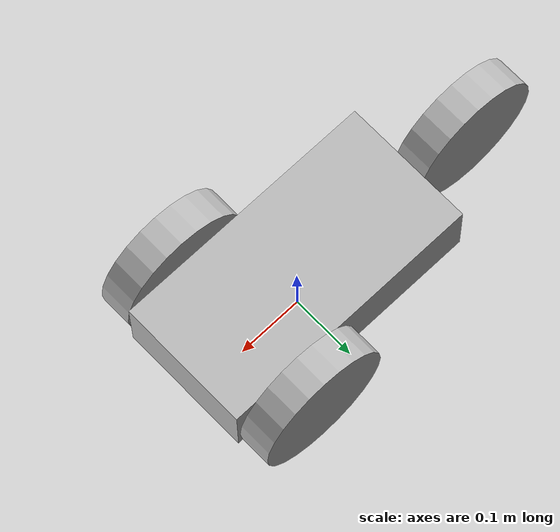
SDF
<?xml version='1.0'?>
<sdf version='1.3'>
  <model name="my_robot">
    <link name='chassis'>
      <pose>0 0 .1 0 0 0</pose>
      <collision name='collision'>
        <geometry>
          <box>
            <size>.4 .2 .1</size>
          </box>
        </geometry>
      </collision>

      <visual name='visual'>
        <geometry>
          <box>
            <size>.4 .2 .1</size>
          </box>
        </geometry>
      </visual>
    </link>

  <link name="back_wheel">
    <pose>-0.3 0 0.1 1.5707 0 0</pose>
    <collision name='collision'>
      <geometry>
        <cylinder>
          <radius>.1</radius>
      <length>.05</length>
        </cylinder>
      </geometry>
    </collision>
    <visual name='visual'>
      <geometry>
        <cylinder>
          <radius>.1</radius>
      <length>.05</length>
        </cylinder>
      </geometry>
    </visual>
  </link>
  <link name="left_wheel">
    <pose>0.1 0.13 0.1 0 1.5707 1.5707</pose>
    <collision name="collision">
      <geometry>
        <cylinder>
          <radius>.1</radius>
          <length>.05</length>
        </cylinder>
      </geometry>
    </collision>
    <visual name="visual">
      <geometry>
        <cylinder>
          <radius>.1</radius>
          <length>.05</length>
        </cylinder>
      </geometry>
    </visual>
  </link>

  <link name="right_wheel">
    <pose>0.1 -0.13 0.1 0 1.5707 1.5707</pose>
    <collision name="collision">
      <geometry>
        <cylinder>
          <radius>.1</radius>
          <length>.05</length>
        </cylinder>
      </geometry>
    </collision>
    <visual name="visual">
      <geometry>
        <cylinder>
          <radius>.1</radius>
          <length>.05</length>
        </cylinder>
      </geometry>
    </visual>
  </link>

  <joint type="revolute" name="left_wheel_hinge">
    <pose>0 0 0 0 0 0</pose>
    <child>left_wheel</child>
    <parent>chassis</parent>
    <axis>
      <xyz>0 1 0</xyz>
    </axis>
  </joint>

  <joint type="revolute" name="right_wheel_hinge">
    <pose>0 0 0 0 0 0</pose>
    <child>right_wheel</child>
    <parent>chassis</parent>
    <axis>
      <xyz>0 1 0</xyz>
    </axis>
  </joint>

  <joint type="revolute" name="back_wheel_hinge">
    <pose>0 0 0 0 0 0</pose>
    <child>back_wheel</child>
    <parent>chassis</parent>
    <axis>
      <xyz>0 1 0</xyz>
    </axis>
  </joint>
  </model>
</sdf>
